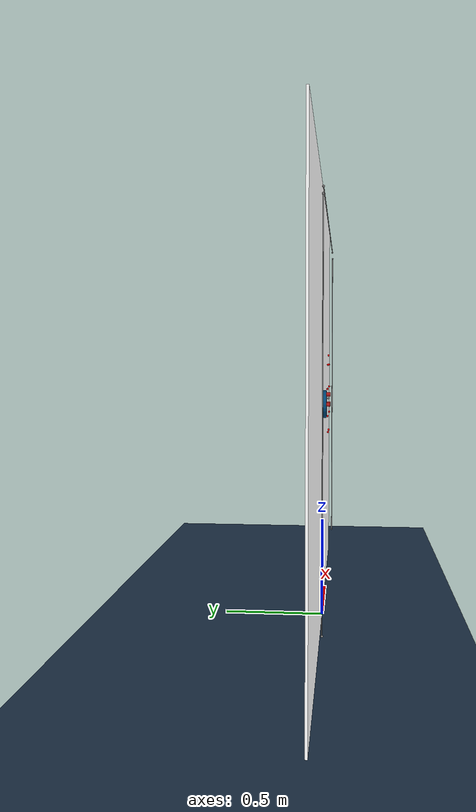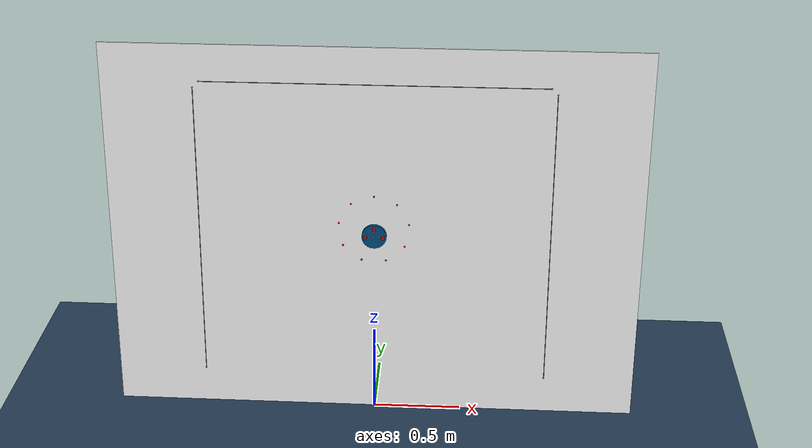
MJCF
<mujoco model="Kamal">
    <option gravity="0 0 -9.81"/>

    <visual>
        <headlight diffuse="0.6 0.6 0.6" ambient="0.3 0.3 0.3" specular="0 0 0"/>
        <rgba haze="0.15 0.25 0.35 1"/>
        <global azimuth="-120" elevation="-20"/>
    </visual>

    <asset>
        <texture type="skybox" builtin="gradient" rgb1="0.3 0.5 0.7" rgb2="0 0 0" width="512" height="3072"/>
        <texture type="2d" name="groundplane" builtin="checker" mark="edge" rgb1="0.2 0.3 0.4" rgb2="0.1 0.2 0.3"
        markrgb="0.8 0.8 0.8" width="300" height="300"/>
        <material name="groundplane" texture="groundplane" texuniform="true" texrepeat="5 5" reflectance="0.1"/>
    </asset>

    <worldbody>

        <light pos="0 0 1.5" dir="0 0 -1" directional="true"/>
        <geom name="floor" size="0 0 0.05" type="plane" material="groundplane"/>

        <body name="base">
            <geom name="board" type="box" size="1.5 0.005 1.1" pos="0 0.005 1.1" rgba="1 1 1 1"/>
            <site name="l1" pos="-0.985 -0.03 1.965"/>
            <site name="l2" pos="-0.985 -0.03 0.235"/>
            <site name="u1" pos="0.95 -0.03 2"/>
            <site name="u2" pos="-0.95 -0.03 2"/>
            <site name="r1" pos="0.985 -0.03 1.965"/>
            <site name="r2" pos="0.985 -0.03 0.235"/>

            <site name="c1" pos="0.0 -0.03 1.3499999999999999" rgba="1 0 0 1"/>
            <site name="c2" pos="0.1288435374475382 -0.03 1.3029684374568977" rgba="1 0 0 1"/>
            <site name="c3" pos="0.1970740609397155 -0.03 1.1840854001697105" rgba="1 0 0 1"/>
            <site name="c4" pos="0.17278306094120313 -0.03 1.0492725764660462" rgba="1 0 0 1"/>
            <site name="c5" pos="0.06752501075341415 -0.03 0.9617438635190041" rgba="1 0 0 1"/>
            <site name="c6" pos="-0.06928185983940897 -0.03 0.9623833059208415" rgba="1 0 0 1"/>
            <site name="c7" pos="-0.17362452577849008 -0.03 1.0507300445845045" rgba="1 0 0 1"/>
            <site name="c8" pos="-0.19684664443957878 -0.03 1.1853751123373204" rgba="1 0 0 1"/>
            <site name="c9" pos="-0.1282692957916252 -0.03 1.3034502778007278" rgba="1 0 0 1"/>
            <site name="c10" pos="2.9564839305816685e-06 -0.03 1.349999999978148" rgba="1 0 0 1"/>

        </body>

        <body name="end_effector" pos="0 -0.01 1.1">
            <joint name="slide_x" type="slide" axis="1 0 0"/>
            <joint name="slide_z" type="slide" axis="0 0 1"/>
            <geom type="cylinder" size="0.07 0.01" euler="90 0 0" rgba="0 0.3 0.5 1" mass="1"/>

                <geom name="p1" type="cylinder" size="0.01 0.01" pos="0 -0.02 0.05" euler="90 0 0" rgba="0.7 0.1 0.1 1" mass="0.5"/>
                    <site name="side1" pos="0 -0.02 0.03"/>

                <geom name="p2" type="cylinder" size="0.01 0.01" pos="0.05 -0.02 0" euler="90 0 0" rgba="0.7 0.1 0.1 1" mass="0.5"/>
                    <site name="side2" pos="0.03 -0.02 0"/>

                <geom name="p3" type="cylinder" size="0.01 0.01" pos="-0.05 -0.02 0" euler="90 0 0" rgba="0.7 0.1 0.1 1" mass="0.5"/>
                    <site name="side3" pos="-0.03 -0.02 0"/>
            <site name="end_pos" pos="0 -0.02 0"/>

        </body>

    </worldbody>

    <tendon>
        <spatial name="tendon1" width=".002" damping="0.1" stiffness="100">
            <site site="u1"/>
            <geom geom="p1" sidesite="side1"/>
            <site site="u2"/>
        </spatial>

        <spatial name="tendon2" width=".002" damping="0.1" stiffness="100">
            <site site="r1"/>
            <geom geom="p2" sidesite="side2"/>
            <site site="r2"/>
        </spatial>

        <spatial name="tendon3" width=".002" damping="0.1" stiffness="100">
            <site site="l1"/>
            <geom geom="p3" sidesite="side3"/>
            <site site="l2"/>
        </spatial>
    </tendon>

    <equality>
        <connect body1="end_effector" body2="base" anchor="0.95 0.03 2"/>
        <connect body1="end_effector" body2="base" anchor="0.985 0.03 1.965"/>
        <connect body1="end_effector" body2="base" anchor="-0.985 0.03 1.965"/>
    </equality>

    <actuator>

        <motor name="Upper Motor" tendon="tendon1" ctrlrange="-1 1" gear="300000"/>
        <motor name="Right Motor" tendon="tendon2" ctrlrange="-1 0" gear="300000"/>
        <motor name="Left Motor" tendon="tendon3" ctrlrange="-1 0" gear="300000"/>
    </actuator>

    <sensor>
        <tendonpos tendon="tendon1"/>
        <tendonpos tendon="tendon2"/>
        <tendonpos tendon="tendon3"/>
        <framepos objtype="site" objname="end_pos"/>
        <framelinvel objtype="site" objname="end_pos"/>
        <framelinacc objtype="site" objname="end_pos"/>
    </sensor>

</mujoco>
